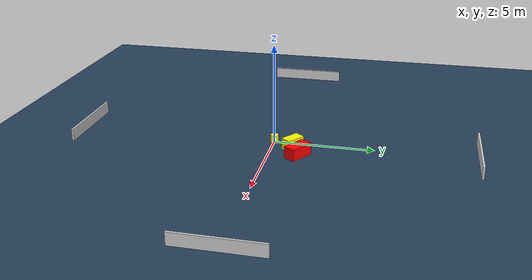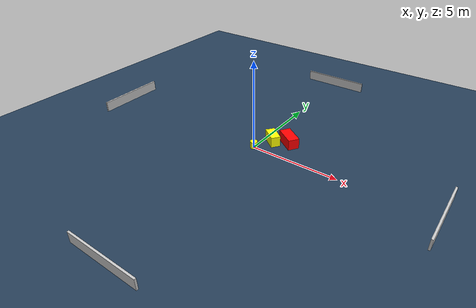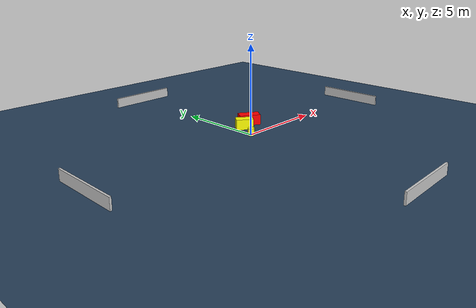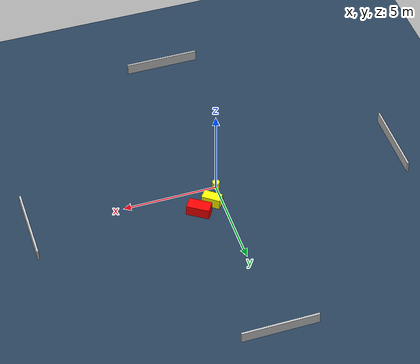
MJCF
<?xml version="1.0" ?>
<mujoco model="generated_environment">
  <option timestep="0.01" integrator="RK4" cone="elliptic"/>
  <default>
    <geom density="1"/>
  </default>
  <asset>
    <texture builtin="gradient" height="3072" name="skybox" rgb1="0.3 0.5 0.7" rgb2="0 0 0" type="skybox" width="512"/>
    <texture builtin="checker" height="300" name="groundplane" rgb1="0.2 0.3 0.4" rgb2="0.1 0.2 0.3" type="2d" width="300"/>
    <material name="groundplane" reflectance="0.2" texrepeat="5 5" texture="groundplane"/>
  </asset>
  <worldbody>
    <light dir="0 0 -1" directional="true" pos="0 0 1.5"/>
    <geom condim="3" friction="0.5 0.005 0.001" material="groundplane" name="floor" pos="0 0 0" size="0 0 0.05" type="plane"/>
    <body name="walls">
      <geom name="wall_1" condim="4" pos="-10.0 0.0 0.3" rgba="0.800000011920929 0.800000011920929 0.800000011920929 1.0" size="0.05 2.0 0.3" type="box"/>
      <geom name="wall_2" condim="4" pos="10.0 0.0 0.3" rgba="0.800000011920929 0.800000011920929 0.800000011920929 1.0" size="0.05 2.0 0.3" type="box"/>
      <geom name="wall_3" condim="4" pos="0.0 -10.0 0.3" rgba="0.800000011920929 0.800000011920929 0.800000011920929 1.0" size="2.0 0.05 0.3" type="box"/>
      <geom name="wall_4" condim="4" pos="0.0 10.0 0.3" rgba="0.800000011920929 0.800000011920929 0.800000011920929 1.0" size="2.0 0.05 0.3" type="box"/>
    </body>
    <body name="robot">
      <joint name="joint_x" type="slide" pos="0 0 0" axis="1 0 0"/>
      <joint name="joint_y" type="slide" pos="0 0 0" axis="0 1 0"/>
      <geom name="robot" type="cylinder" pos="0.0 0.0 0.2" size="0.2 0.2 0.0" mass="5.0" friction="1.0 0.005 0.0001" condim="4" rgba="1.0 1.0 0.0 1.0"/>
    </body>
    <body name="obstacle_1_movable">
      <geom name="obstacle_1_movable" condim="4" pos="0.5545556476993532 1.0386018975720668 0.3" euler="0 0 232.74127298146811" friction="0.0 0.005 0.001" rgba="1.0 1.0 0.0 1.0" size="0.26419911450704264 0.49189155566375037 0.3" type="box" mass="0.1"/>
      <joint type="free"/>
    </body>
    <body name="obstacle_2_static">
      <geom name="obstacle_2_static" condim="4" pos="1.3735176240442029 1.4379621896560193 0.3" euler="0 0 236.29842814379276" friction="0.0 0.005 0.001" rgba="1.0 0.0 0.0 1.0" size="0.3149595255060367 0.6069248000648473 0.3" type="box"/>
    </body>
  </worldbody>
  <actuator>
    <motor name="actuator_x" joint="joint_x" gear="1" ctrlrange="-1 1"/>
    <motor name="actuator_y" joint="joint_y" gear="1" ctrlrange="-1 1"/>
  </actuator>
</mujoco>
